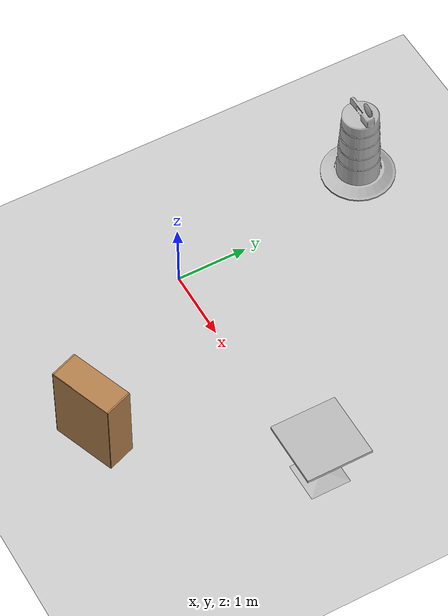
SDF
<sdf version="1.7">
 <world name="default">
  <model name="ground_plane">
   <static>1</static>
   <link name="link">
    <collision name="collision">
     <geometry><plane><normal>0 0 1</normal><size>100 100</size></plane></geometry>
     <surface>
      <contact><collide_bitmask>65535</collide_bitmask></contact>
      <friction><ode><mu>100</mu><mu2>50</mu2></ode></friction>
     </surface>
    </collision>
    <visual name="visual">
     <cast_shadows>0</cast_shadows>
     <geometry><plane><normal>0 0 1</normal><size>100 100</size></plane></geometry>
     <material>
      <script><uri>file://media/materials/scripts/gazebo.material</uri><name>Gazebo/Grey</name></script>
     </material>
    </visual>
   </link>
  </model>
  <light name="sun" type="directional">
   <pose>0 0 10 0 -0 0</pose>
   <diffuse>0.8 0.8 0.8 1</diffuse>
   <specular>0.2 0.2 0.2 1</specular>
   <attenuation>
    <range>1000</range>
    <constant>0.9</constant>
    <linear>0.01</linear>
    <quadratic>0.001</quadratic>
   </attenuation>
   <direction>-0.5 0.1 -0.9</direction>
   <spot><inner_angle>0</inner_angle><outer_angle>0</outer_angle><falloff>0</falloff></spot>
  </light>
  <gravity>0 0 -9.8</gravity>
  <magnetic_field>6e-06 2.3e-05 -4.2e-05</magnetic_field>
  <atmosphere type="adiabatic"/>
  <physics type="ode">
   <max_step_size>0.001</max_step_size>
   <real_time_factor>1</real_time_factor>
   <real_time_update_rate>1000</real_time_update_rate>
  </physics>
  <scene><ambient>0.4 0.4 0.4 1</ambient><background>0.7 0.7 0.7 1</background><shadows>1</shadows></scene>
  <spherical_coordinates>
   <surface_model>EARTH_WGS84</surface_model>
   <latitude_deg>0</latitude_deg>
   <longitude_deg>0</longitude_deg>
   <elevation>0</elevation>
   <heading_deg>0</heading_deg>
  </spherical_coordinates>
  <model name="cafe_table">
   <static>1</static>
   <link name="link">
    <collision name="surface">
     <pose>0 0 0.755 0 -0 0</pose>
     <geometry><box><size>0.913 0.913 0.04</size></box></geometry>
    </collision>
    <collision name="column">
     <pose>0 0 0.37 0 -0 0</pose>
     <geometry><box><size>0.042 0.042 0.74</size></box></geometry>
    </collision>
    <collision name="base">
     <pose>0 0 0.02 0 -0 0</pose>
     <geometry><box><size>0.56 0.56 0.04</size></box></geometry>
    </collision>
    <visual name="visual">
     <geometry><mesh><uri>model://cafe_table/meshes/cafe_table.dae</uri></mesh></geometry>
    </visual>
   </link>
   <pose>3.5373 0.07531 0 0 -0 0</pose>
  </model>
  <model name="bookshelf">
   <static>1</static>
   <link name="link">
    <inertial><mass>1</mass></inertial>
    <collision name="back">
     <pose>0 0.005 0.6 0 -0 0</pose>
     <geometry><box><size>0.9 0.01 1.2</size></box></geometry>
    </collision>
    <visual name="visual1">
     <pose>0 0.005 0.6 0 -0 0</pose>
     <geometry><box><size>0.9 0.01 1.2</size></box></geometry>
     <material>
      <script><uri>file://media/materials/scripts/gazebo.material</uri><name>Gazebo/Wood</name></script>
     </material>
    </visual>
    <collision name="left_side">
     <pose>0.45 -0.195 0.6 0 -0 0</pose>
     <geometry><box><size>0.02 0.4 1.2</size></box></geometry>
    </collision>
    <visual name="visual2">
     <pose>0.45 -0.195 0.6 0 -0 0</pose>
     <geometry><box><size>0.02 0.4 1.2</size></box></geometry>
     <material>
      <script><uri>file://media/materials/scripts/gazebo.material</uri><name>Gazebo/Wood</name></script>
     </material>
    </visual>
    <collision name="right_side">
     <pose>-0.45 -0.195 0.6 0 -0 0</pose>
     <geometry><box><size>0.02 0.4 1.2</size></box></geometry>
    </collision>
    <visual name="visual3">
     <pose>-0.45 -0.195 0.6 0 -0 0</pose>
     <geometry><box><size>0.02 0.4 1.2</size></box></geometry>
     <material>
      <script><uri>file://media/materials/scripts/gazebo.material</uri><name>Gazebo/Wood</name></script>
     </material>
    </visual>
    <collision name="bottom">
     <pose>0 -0.195 0.03 0 -0 0</pose>
     <geometry><box><size>0.88 0.4 0.06</size></box></geometry>
    </collision>
    <visual name="visual4">
     <pose>0 -0.195 0.03 0 -0 0</pose>
     <geometry><box><size>0.88 0.4 0.06</size></box></geometry>
     <material>
      <script><uri>file://media/materials/scripts/gazebo.material</uri><name>Gazebo/Wood</name></script>
     </material>
    </visual>
    <collision name="top">
     <pose>0 -0.195 1.19 0 -0 0</pose>
     <geometry><box><size>0.88 0.4 0.02</size></box></geometry>
    </collision>
    <visual name="visual5">
     <pose>0 -0.195 1.19 0 -0 0</pose>
     <geometry><box><size>0.88 0.4 0.02</size></box></geometry>
     <material>
      <script><uri>file://media/materials/scripts/gazebo.material</uri><name>Gazebo/Wood</name></script>
     </material>
    </visual>
    <collision name="low_shelf">
     <pose>0 -0.195 0.43 0 -0 0</pose>
     <geometry><box><size>0.88 0.4 0.02</size></box></geometry>
    </collision>
    <visual name="visual6">
     <pose>0 -0.195 0.43 0 -0 0</pose>
     <geometry><box><size>0.88 0.4 0.02</size></box></geometry>
     <material>
      <script><uri>file://media/materials/scripts/gazebo.material</uri><name>Gazebo/Wood</name></script>
     </material>
    </visual>
    <collision name="high_shelf">
     <pose>0 -0.195 0.8 0 -0 0</pose>
     <geometry><box><size>0.88 0.4 0.02</size></box></geometry>
    </collision>
    <visual name="visual7">
     <pose>0 -0.195 0.8 0 -0 0</pose>
     <geometry><box><size>0.88 0.4 0.02</size></box></geometry>
     <material>
      <script><uri>file://media/materials/scripts/gazebo.material</uri><name>Gazebo/Wood</name></script>
     </material>
    </visual>
   </link>
   <pose>1.76599 -2.31148 0 0 0 -2.78458</pose>
  </model>
  <model name="Construction Barrel">
   <link name="link">
    <inertial>
     <pose>0 0 0.4 0 -0 0</pose>
     <mass>500</mass>
     <inertia><ixx>51.2096</ixx><iyy>51.2096</iyy><izz>25</izz><ixy>0</ixy><ixz>0</ixz><iyz>0</iyz></inertia>
    </inertial>
    <collision name="collision">
     <geometry><mesh><uri>model://construction_barrel/meshes/construction_barrel.dae</uri></mesh></geometry>
    </collision>
    <visual name="visual">
     <geometry><mesh><uri>model://construction_barrel/meshes/construction_barrel.dae</uri></mesh></geometry>
    </visual>
   </link>
   <pose>-0.41214 2.97314 -1e-06 3e-06 -2e-06 -2e-06</pose>
  </model>
 </world>
</sdf>
